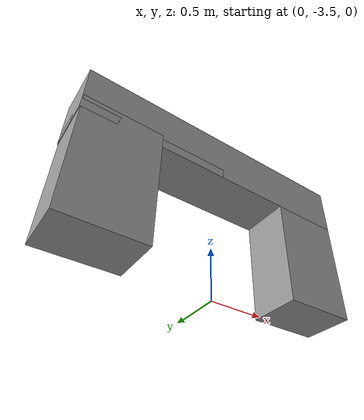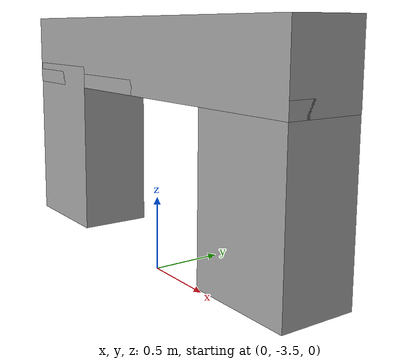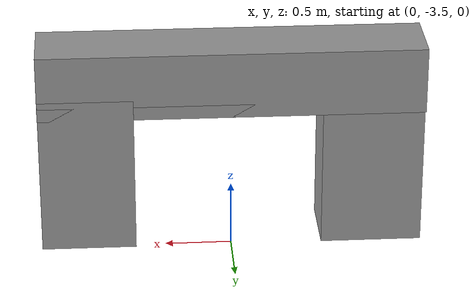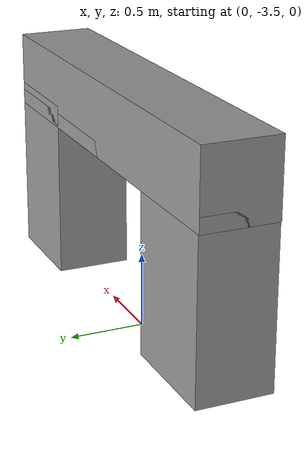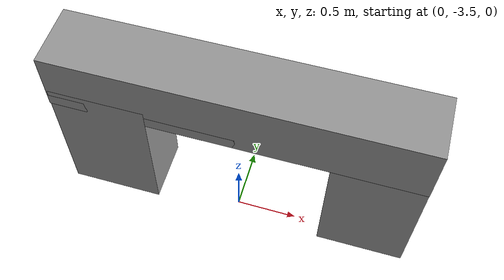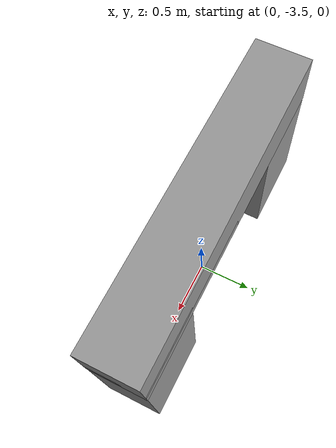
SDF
<?xml version='1.0'?>
<sdf version='1.5'>
  <model name='model'>
    <pose frame=''>0.007 -3.45 0 0 -0 0</pose>
    <link name='Floor_1'>
      <collision name='Floor_1_Collision'>
        <geometry>
          <box>
            <size>2.85 0.5 0.1</size>
          </box>
        </geometry>
        <pose frame=''>0 0 0.05 0 -0 0</pose>
      </collision>
      <visual name='Floor_1_Visual'>
        <pose frame=''>0 0 0.05 0 -0 0</pose>
        <geometry>
          <box>
            <size>2.85 0.5 0.1</size>
          </box>
        </geometry>
        <material>
          <script>
            <uri>file://media/materials/scripts/gazebo.material</uri>
            <name>Gazebo/Grey</name>
          </script>
          <ambient>1 1 1 1</ambient>
        </material>
      </visual>
      <pose frame=''>0 0 1.2 0 -0 0</pose>
    </link>
    <link name='Wall_0'>
      <collision name='Wall_0_Collision'>
        <geometry>
          <box>
            <size>0.75 0.5 1.2</size>
          </box>
        </geometry>
        <pose frame=''>0 0 0.75 0 -0 0</pose>
      </collision>
      <visual name='Wall_0_Visual'>
        <pose frame=''>0 0 0.75 0 -0 0</pose>
        <geometry>
          <box>
            <size>0.75 0.5 1.2</size>
          </box>
        </geometry>
        <material>
          <script>
            <uri>file://media/materials/scripts/gazebo.material</uri>
            <name>Gazebo/Grey</name>
          </script>
          <ambient>1 1 1 1</ambient>
        </material>
      </visual>
      <pose frame=''>-1.042 0 0 0 -0 3.14159</pose>
    </link>
    <link name='Wall_2'>
      <collision name='Wall_2_Collision'>
        <geometry>
          <box>
            <size>0.7 0.5 1.2</size>
          </box>
        </geometry>
        <pose frame=''>0 0 0.75 0 -0 0</pose>
      </collision>
      <visual name='Wall_2_Visual'>
        <pose frame=''>0 0 0.75 0 -0 0</pose>
        <geometry>
          <box>
            <size>0.7 0.5 1.2</size>
          </box>
        </geometry>
        <material>
          <script>
            <uri>file://media/materials/scripts/gazebo.material</uri>
            <name>Gazebo/Grey</name>
          </script>
          <ambient>1 1 1 1</ambient>
        </material>
      </visual>
      <pose frame=''>1.073 0 0 0 -0 0</pose>
    </link>
    <link name='Wall_6'>
      <collision name='Wall_6_Collision'>
        <geometry>
          <box>
            <size>2.85 0.5 0.5</size>
          </box>
        </geometry>
        <pose frame=''>0 0 0.25 0 -0 0</pose>
      </collision>
      <visual name='Wall_6_Visual'>
        <pose frame=''>0 0 0.25 0 -0 0</pose>
        <geometry>
          <box>
            <size>2.85 0.5 0.5</size>
          </box>
        </geometry>
        <material>
          <script>
            <uri>file://media/materials/scripts/gazebo.material</uri>
            <name>Gazebo/Grey</name>
          </script>
          <ambient>1 1 1 1</ambient>
        </material>
      </visual>
      <pose frame=''>0 0 1.2 0 -0 3.14159</pose>
    </link>
    <static>1</static>
  </model>
</sdf>
